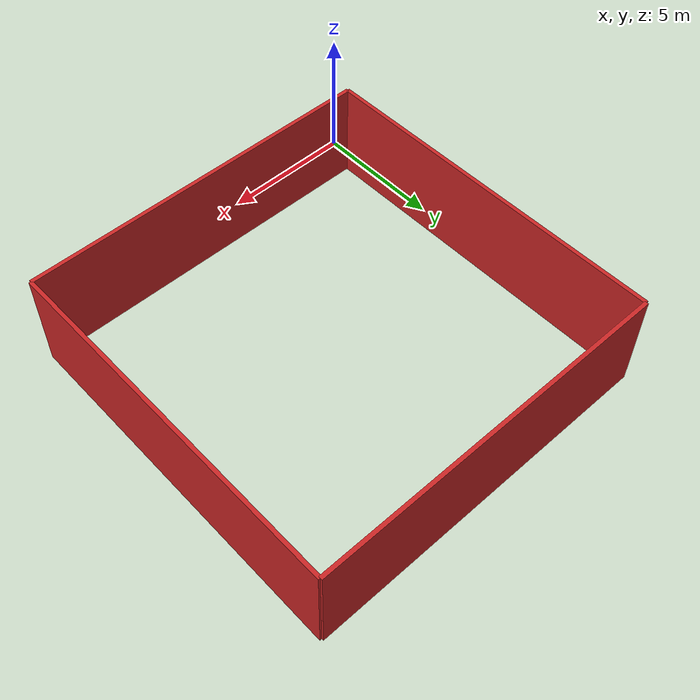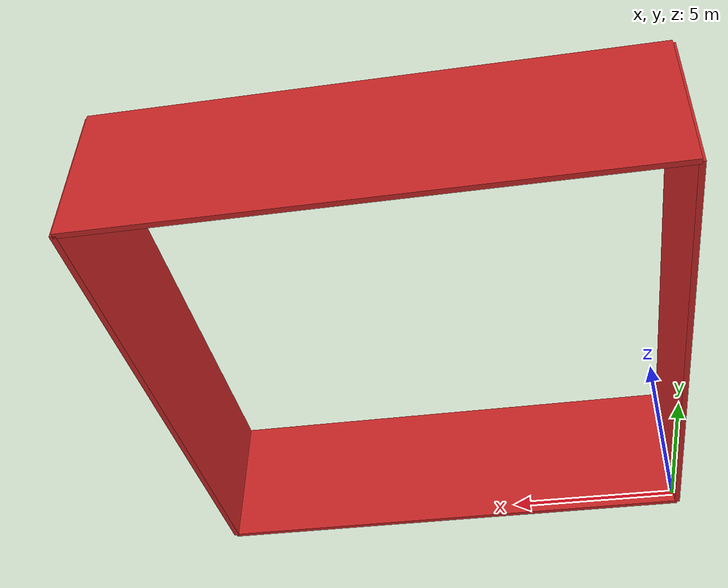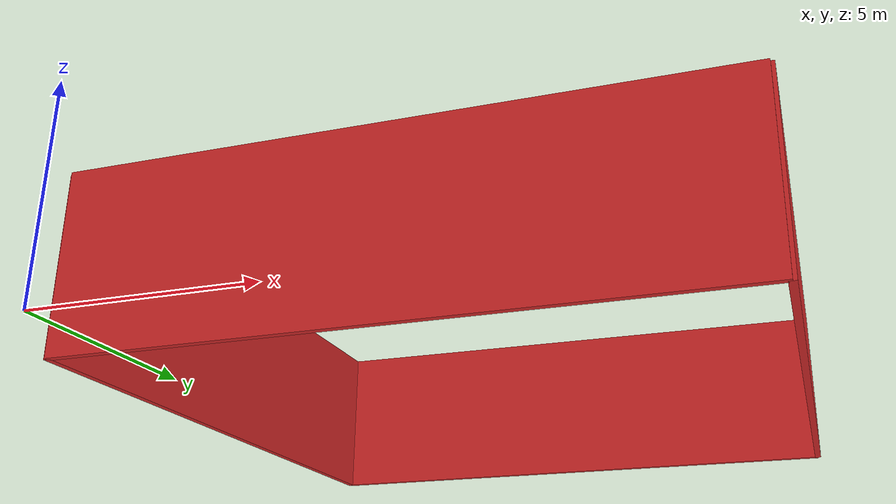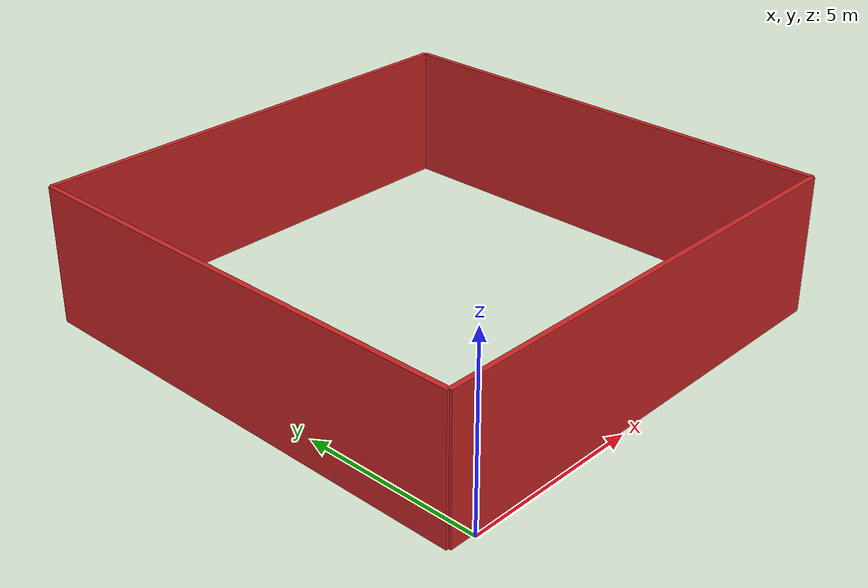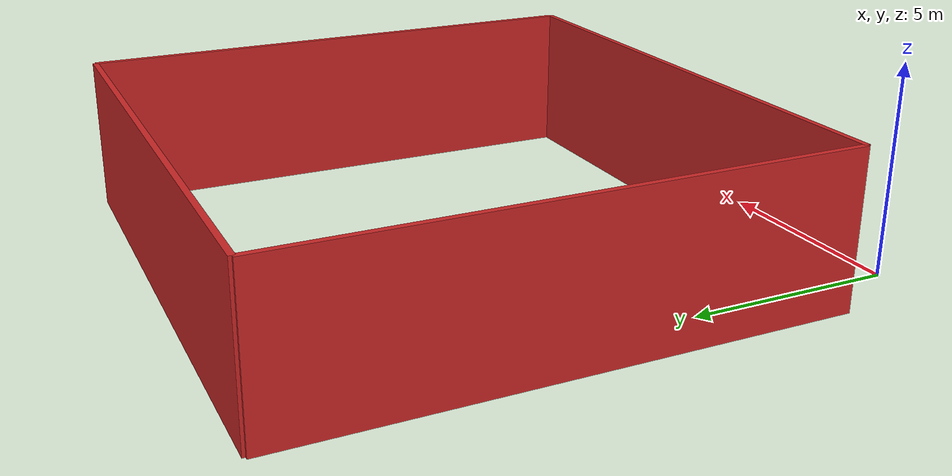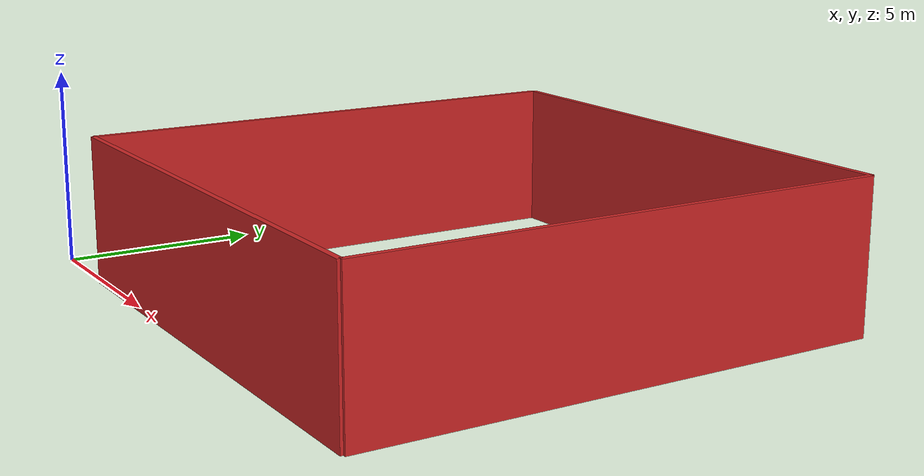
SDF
<?xml version='1.0'?>
<sdf version='1.7'>
  <model name='paredladrillo'>
    <pose>7 7.7672 0 0 -0 0</pose>
    <link name='Wall_0'>
      <collision name='Wall_0_Collision'>
        <geometry>
          <box>
            <size>14 0.15 4</size>
          </box>
        </geometry>
        <pose>0 0 1.25 0 -0 0</pose>
      </collision>
      <visual name='Wall_0_Visual'>
        <pose>0 0 1.25 0 -0 0</pose>
        <geometry>
          <box>
            <size>14 0.15 4</size>
          </box>
        </geometry>
        <material>
          <script>
            <uri>model://paredladrillo/materials/scripts</uri>
            <uri>model://paredladrillo/materials/textures</uri>
            <name>textur/pared</name>
          </script>
          <ambient>1 1 1 1</ambient>
        </material>
        <meta>
          <layer>0</layer>
        </meta>
      </visual>
      <pose>-7 -0 0 0 -0 1.5708</pose>
    </link>
    <link name='Wall_1'>
      <collision name='Wall_1_Collision'>
        <geometry>
          <box>
            <size>14 0.15 4</size>
          </box>
        </geometry>
        <pose>0 0 1.25 0 -0 0</pose>
      </collision>
      <visual name='Wall_1_Visual'>
        <pose>0 0 1.25 0 -0 0</pose>
        <geometry>
          <box>
            <size>14 0.15 4</size>
          </box>
        </geometry>
        <material>
          <script>
            <uri>model://paredladrillo/materials/scripts</uri>
            <uri>model://paredladrillo/materials/textures</uri>
            <name>textur/pared</name>
          </script>
          <ambient>1 1 1 1</ambient>
        </material>
        <meta>
          <layer>0</layer>
        </meta>
      </visual>
      <pose>1e-06 7 0 0 -0 0</pose>
    </link>
    <link name='Wall_2'>
      <collision name='Wall_2_Collision'>
        <geometry>
          <box>
            <size>14 0.15 4</size>
          </box>
        </geometry>
        <pose>0 0 1.25 0 -0 0</pose>
      </collision>
      <visual name='Wall_2_Visual'>
        <pose>0 0 1.25 0 -0 0</pose>
        <geometry>
          <box>
            <size>14 0.15 4</size>
          </box>
        </geometry>
        <material>
          <script>
            <uri>model://paredladrillo/materials/scripts</uri>
            <uri>model://paredladrillo/materials/textures</uri>
            <name>textur/pared</name>
          </script>
          <ambient>1 1 1 1</ambient>
        </material>
        <meta>
          <layer>0</layer>
        </meta>
      </visual>
      <pose>7 -0 0 0 -0 -1.5708</pose>
    </link>
    <link name='Wall_3'>
      <collision name='Wall_3_Collision'>
        <geometry>
          <box>
            <size>14 0.15 4</size>
          </box>
        </geometry>
        <pose>0 0 1.25 0 -0 0</pose>
      </collision>
      <visual name='Wall_3_Visual'>
        <pose>0 0 1.25 0 -0 0</pose>
        <geometry>
          <box>
            <size>14 0.15 4</size>
          </box>
        </geometry>
        <material>
          <script>
            <uri>model://paredladrillo/materials/scripts</uri>
            <uri>model://paredladrillo/materials/textures</uri>
            <name>textur/pared</name>
          </script>
          <ambient>1 1 1 1</ambient>
        </material>
        <meta>
          <layer>0</layer>
        </meta>
      </visual>
      <pose>1e-06 -7 0 0 -0 3.14159</pose>
    </link>
    <static>1</static>
  </model>
</sdf>
